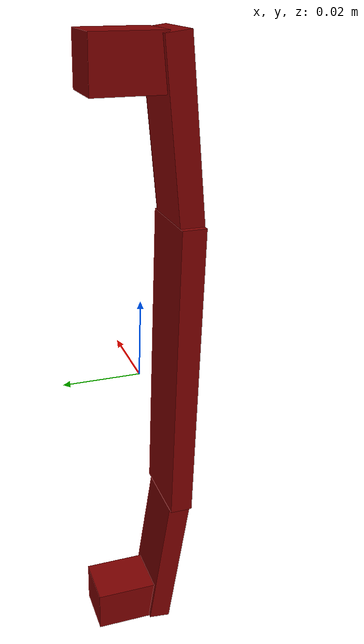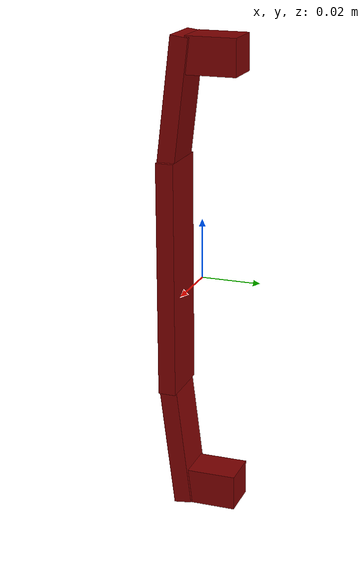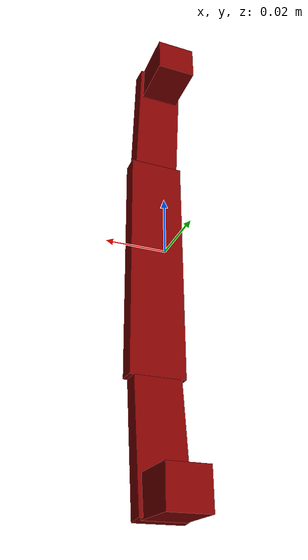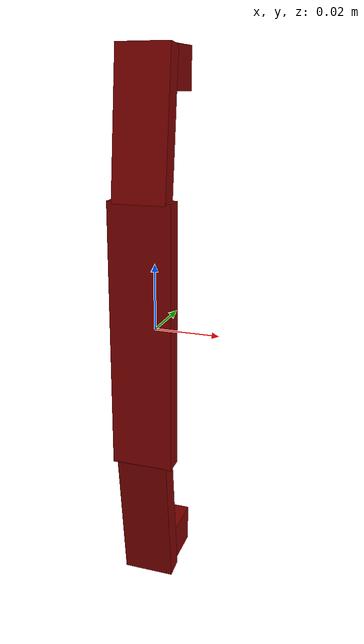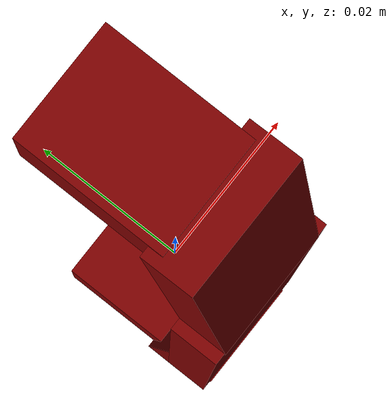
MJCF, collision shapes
<?xml version='1.0' encoding='UTF-8'?>
<mujoco model="model">
  <option timestep="0.002" gravity="0.0 0.0 -9.81"/>
  <compiler angle="radian"/>
  <asset>
    <mesh file="visuals/CabinetHandle002.obj" name="CabinetHandle002_vis"/>
    <texture file="visuals/T_BC001.png" name="tex" type="2d"/>
    <material name="mat" rgba="1 1 1 1.0" texture="tex" shininess="0.5" specular="0.3103448502657381"/>
  </asset>
  <default>
    <default class="visual">
      <geom conaffinity="0" contype="0" group="1" type="mesh"/>
    </default>
    <default class="collision">
      <geom group="0" rgba="0.5 0 0 0.5" density="1.0" solref="0.004 1" solimp="0.998 0.998 0.001"/>
    </default>
    <default class="spawn">
      <geom group="0" rgba="1 1 1 0.5" contype="0" conaffinity="0"/>
      <site group="0" rgba="1 1 1 0.5"/>
    </default>
    <default class="region">
      <geom group="1" conaffinity="0" contype="0" rgba="0 1 0 0" mass="0"/>
    </default>
  </default>
  <worldbody>
    <body>
      <body name="object">
        <geom mesh="CabinetHandle002_vis" type="mesh" solimp="0.998 0.998 0.001" solref="0.001 1" friction="0.95 0.3 0.1" class="visual" material="mat"/>
        <geom type="box" pos="8.594613359579096e-21 -0.009553099051117897 3.87066975235939e-05" size="0.0093029560521245 0.002987565938383341 0.04003135487437248" quat="1.0 0.0 0.0 0.0" class="collision"/>
        <geom type="box" pos="1.2406339377201027e-17 -0.0072095515206456184 0.059698913246393204" size="0.007851731963455677 0.0029875654727220535 0.020851613953709602" quat="0.9981684684753418 -0.06049560755491257 -1.3432722452049688e-17 2.8063371715830146e-24" class="collision"/>
        <geom type="box" pos="1.6545372491404066e-17 0.005101034417748451 0.07451373338699341" size="0.0066272602416574955 0.008482099510729313 0.006069120019674301" quat="1.0 0.0 0.0 0.0" class="collision"/>
        <geom type="box" pos="-1.1184874137981637e-09 -0.007209553383290768 -0.06008649617433548" size="0.007851731963455677 0.002987565705552697 0.020851613953709602" quat="7.535962254223705e-08 -4.5672909898542e-09 0.9981684684753418 0.060495734214782715" class="collision"/>
        <geom type="box" pos="1.118487968909676e-09 0.0051010362803936005 -0.07490131258964539" size="0.00662726117298007 0.008482097648084164 0.006069118622690439" quat="1.0 0.0 0.0 0.0" class="collision"/>
        <geom class="region" name="reg_main" type="box" pos="-1.3969838619232178e-09 4.656612873077393e-10 0.0" size="0.010132506325840951 0.014493999838829041 0.0819520035982132"/>
      </body>
    </body>
  </worldbody>
  <actuator/>
</mujoco>
